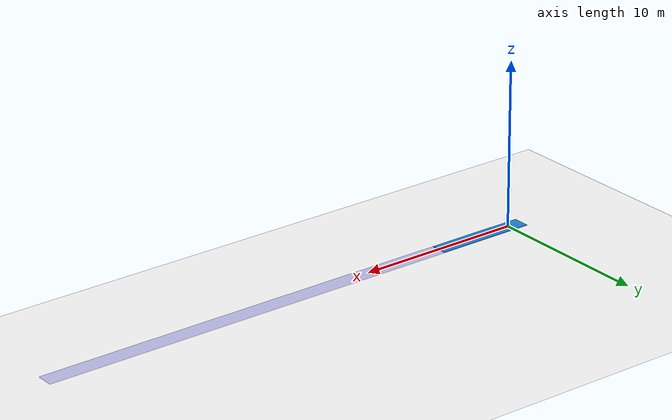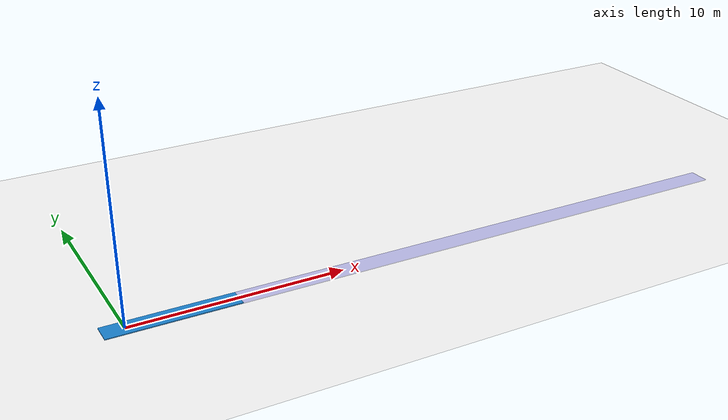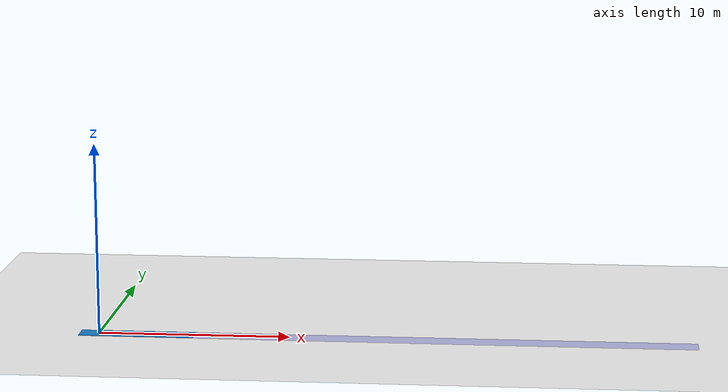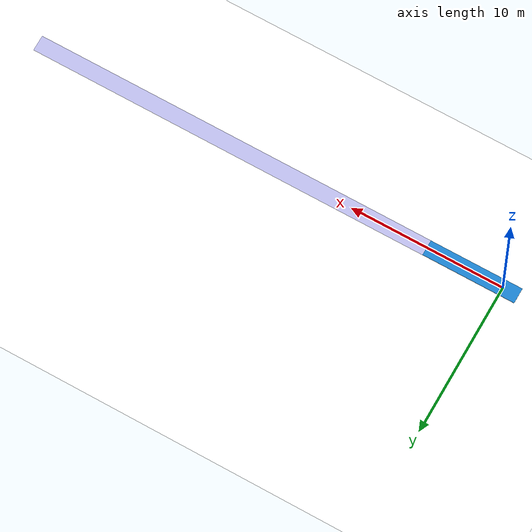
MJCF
<mujoco model="scene">

    <statistic center="0 0 0.1" extent="0.8"/>

    <visual>
        <headlight diffuse="0.6 0.6 0.6" ambient="0.3 0.3 0.3" specular="0 0 0"/>
        <rgba haze="0.99 0.99 0.99 1"/>
        <global azimuth="-130" elevation="-20"/>
    </visual>

    <asset>
        <texture
                type="skybox"
                builtin="gradient"
                rgb1="0.99 0.99 0.99"
                rgb2="0.99 0.99 0.99"
                width="512"
                height="3072"
        />
        <texture
                type="2d"
                name="groundplane"
                builtin="checker"
                mark="edge"
                rgb1="0.93 0.93 0.93"
                rgb2="1.0 1.0 1.0"
                markrgb="1 1 1"
                width="200"
                height="200"
        />
        <material name="groundplane" texture="groundplane" texuniform="true" texrepeat="5 5" reflectance="0.05"/>
    </asset>

  <worldbody>

    <light pos="0 0 1.5" dir="0 0 -1" directional="true"/>
    <geom name="floor" size="0 0 0.05" type="plane" material="groundplane"/>

    <geom name="slippery_surface_1" pos="18.0 0 -0.19" size="13.0 0.5 0.2" type="box" priority="2" friction="0.03 0.05 0.07" rgba="0.2 0.2 0.8 0.3"/>
    <geom name="slippery_surface_2" pos="2.0 0 -0.19" size="3.0 0.5 0.2" type="box" priority="2" friction="0.8 0.2 0.3" rgba="0.1 0.5 0.8 1"/>

  </worldbody>
</mujoco>
